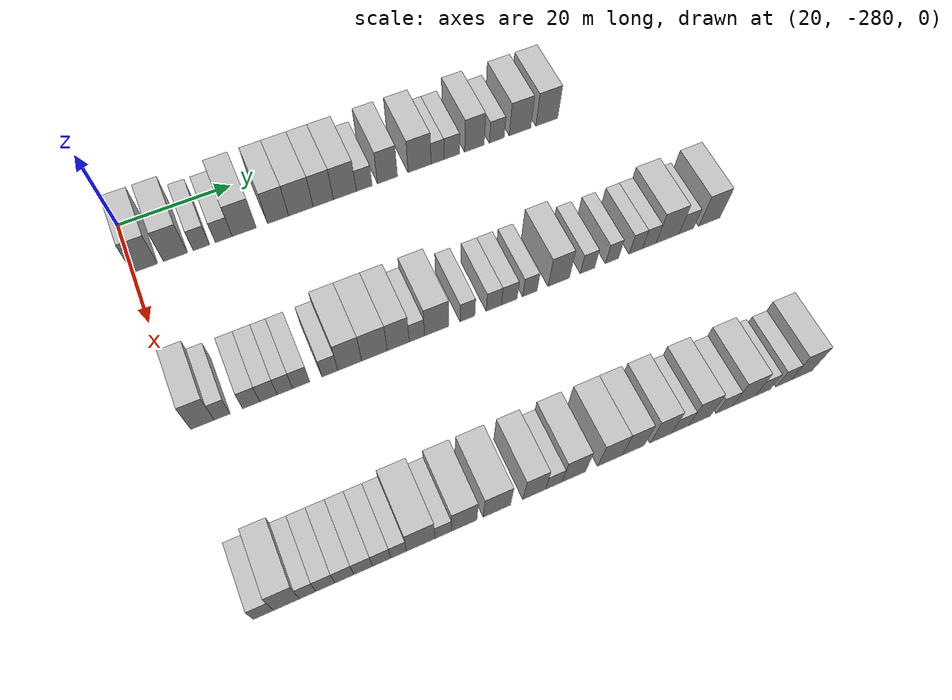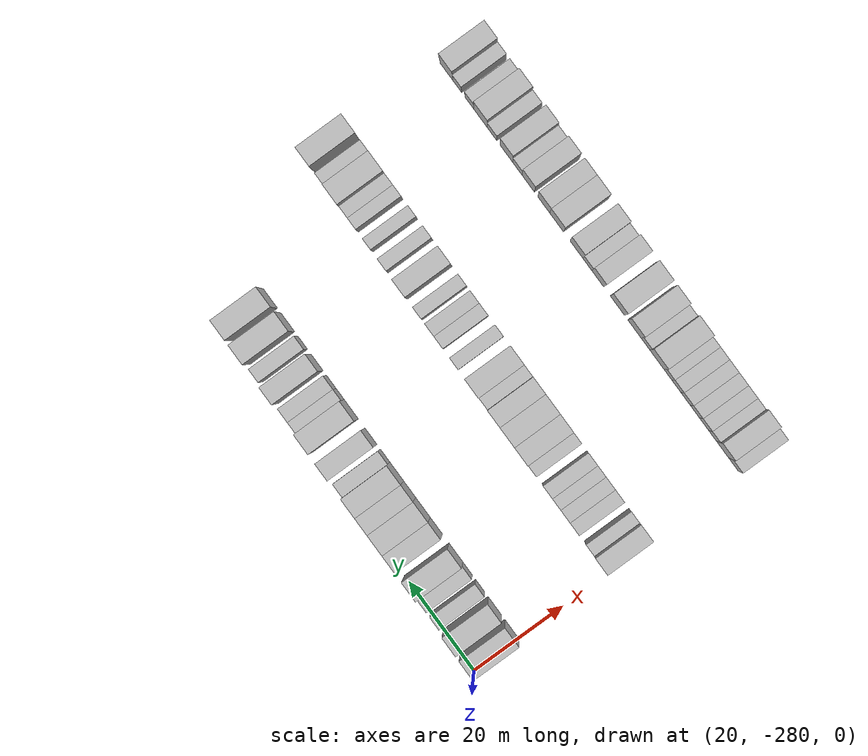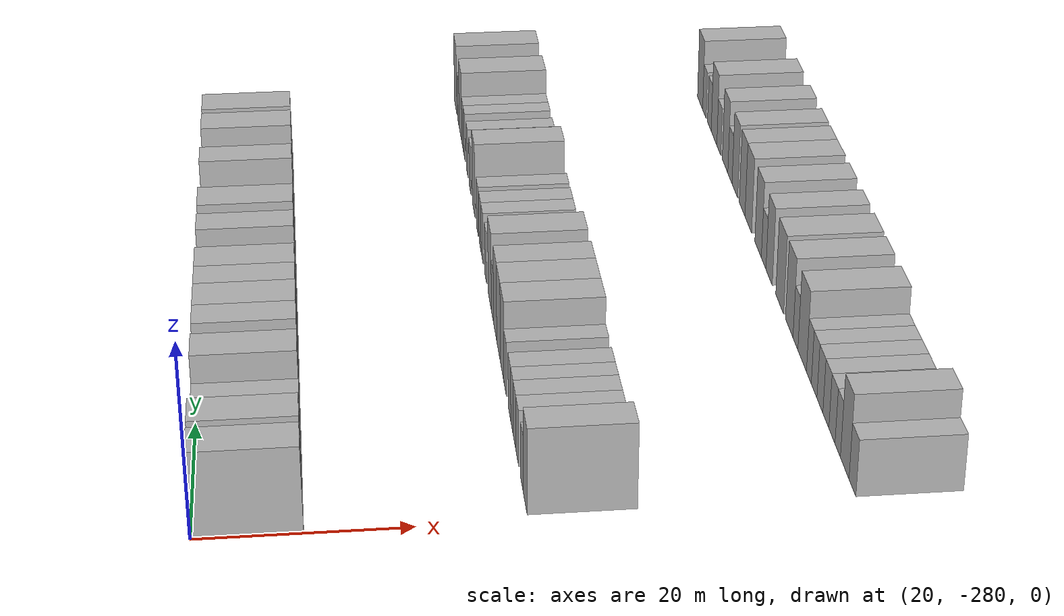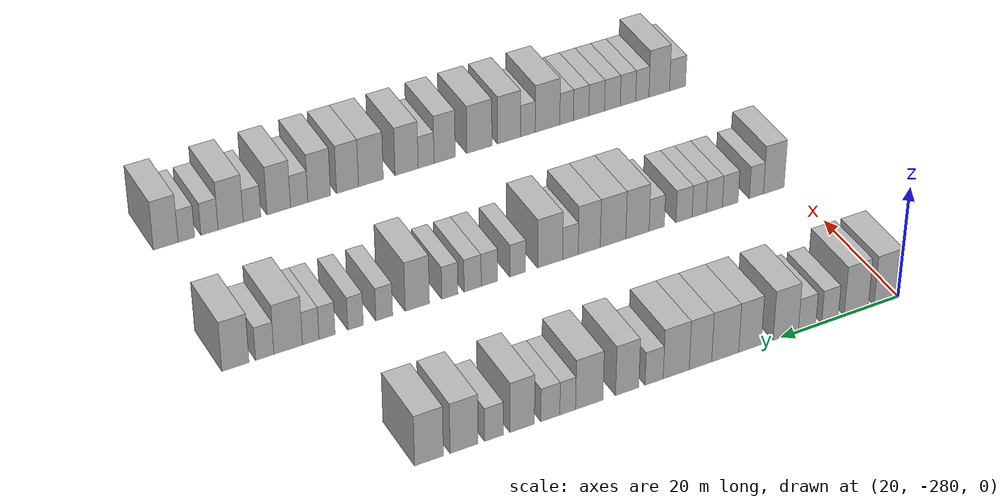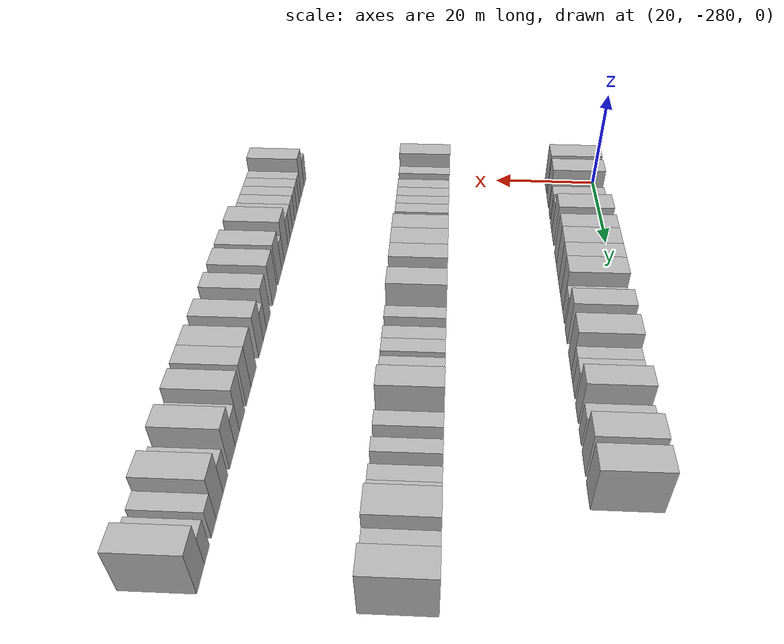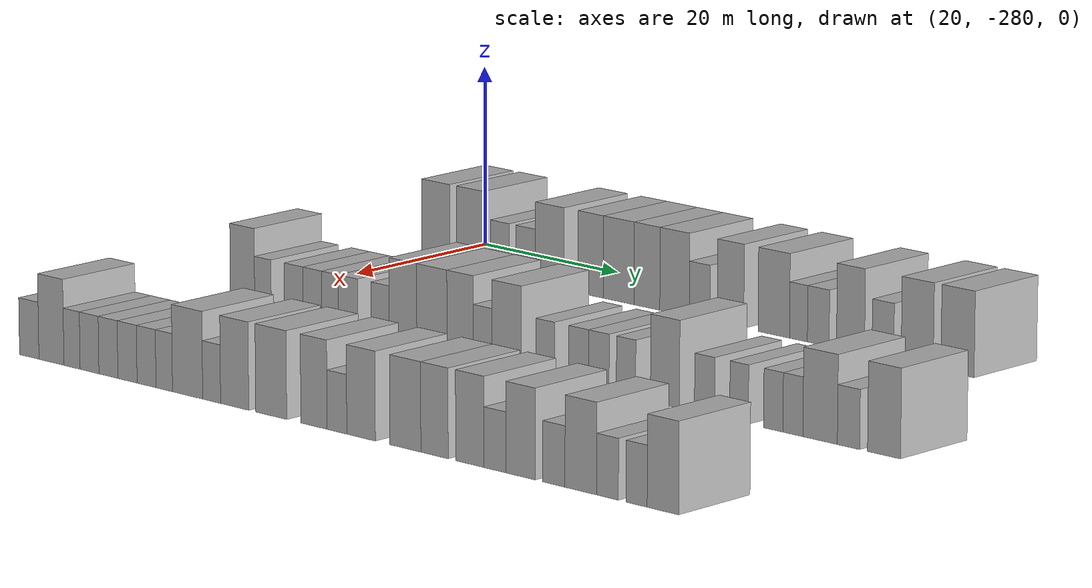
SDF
<sdf version="1.6">
 <world name="default">
  <model name="building_1">
   <static>1</static>
   <pose>25.0000 -277.8792 0 0.000000 0.000000 0.000000</pose>
   <link name="link">
    <pose>0 0 4.50 0 0 0</pose>
    <collision name="collision"><geometry><box><size>10.0000 4.2417 9.0000</size></box></geometry></collision>
    <visual name="visual">
     <cast_shadows>0</cast_shadows>
     <geometry><box><size>10.0000 4.2417 9.0000</size></box></geometry>
     <material>
      <script>
       <uri>model://HANNAS_wall/materials/scripts</uri>
       <uri>model://HANNAS_wall/materials/textures</uri>
       <name>vrc/HANNAS_wall</name>
      </script>
     </material>
    </visual>
   </link>
  </model>
  <model name="building_2">
   <static>1</static>
   <pose>25.0000 -272.6916 0 0.000000 0.000000 0.000000</pose>
   <link name="link">
    <pose>0 0 4.50 0 0 0</pose>
    <collision name="collision"><geometry><box><size>10.0000 4.1333 9.0000</size></box></geometry></collision>
    <visual name="visual">
     <cast_shadows>0</cast_shadows>
     <geometry><box><size>10.0000 4.1333 9.0000</size></box></geometry>
     <material>
      <script>
       <uri>model://HANNAS_wall/materials/scripts</uri>
       <uri>model://HANNAS_wall/materials/textures</uri>
       <name>vrc/HANNAS_wall</name>
      </script>
     </material>
    </visual>
   </link>
  </model>
  <model name="building_3">
   <static>1</static>
   <pose>25.0000 -268.2089 0 0.000000 0.000000 0.000000</pose>
   <link name="link">
    <pose>0 0 3.00 0 0 0</pose>
    <collision name="collision"><geometry><box><size>10.0000 2.8322 6.0000</size></box></geometry></collision>
    <visual name="visual">
     <cast_shadows>0</cast_shadows>
     <geometry><box><size>10.0000 2.8322 6.0000</size></box></geometry>
     <material>
      <script>
       <uri>model://HANNAS_wall/materials/scripts</uri>
       <uri>model://HANNAS_wall/materials/textures</uri>
       <name>vrc/HANNAS_wall</name>
      </script>
     </material>
    </visual>
   </link>
  </model>
  <model name="building_4">
   <static>1</static>
   <pose>25.0000 -264.3238 0 0.000000 0.000000 0.000000</pose>
   <link name="link">
    <pose>0 0 3.00 0 0 0</pose>
    <collision name="collision"><geometry><box><size>10.0000 2.9380 6.0000</size></box></geometry></collision>
    <visual name="visual">
     <cast_shadows>0</cast_shadows>
     <geometry><box><size>10.0000 2.9380 6.0000</size></box></geometry>
     <material>
      <script>
       <uri>model://HANNAS_wall/materials/scripts</uri>
       <uri>model://HANNAS_wall/materials/textures</uri>
       <name>vrc/HANNAS_wall</name>
      </script>
     </material>
    </visual>
   </link>
  </model>
  <model name="building_5">
   <static>1</static>
   <pose>25.0000 -260.7361 0 0.000000 0.000000 0.000000</pose>
   <link name="link">
    <pose>0 0 4.50 0 0 0</pose>
    <collision name="collision"><geometry><box><size>10.0000 4.2375 9.0000</size></box></geometry></collision>
    <visual name="visual">
     <cast_shadows>0</cast_shadows>
     <geometry><box><size>10.0000 4.2375 9.0000</size></box></geometry>
     <material>
      <script>
       <uri>model://HANNAS_wall/materials/scripts</uri>
       <uri>model://HANNAS_wall/materials/textures</uri>
       <name>vrc/HANNAS_wall</name>
      </script>
     </material>
    </visual>
   </link>
  </model>
  <model name="building_6">
   <static>1</static>
   <pose>25.0000 -254.7386 0 0.000000 0.000000 0.000000</pose>
   <link name="link">
    <pose>0 0 4.50 0 0 0</pose>
    <collision name="collision"><geometry><box><size>10.0000 3.7576 9.0000</size></box></geometry></collision>
    <visual name="visual">
     <cast_shadows>0</cast_shadows>
     <geometry><box><size>10.0000 3.7576 9.0000</size></box></geometry>
     <material>
      <script>
       <uri>model://HANNAS_wall/materials/scripts</uri>
       <uri>model://HANNAS_wall/materials/textures</uri>
       <name>vrc/HANNAS_wall</name>
      </script>
     </material>
    </visual>
   </link>
  </model>
  <model name="building_7">
   <static>1</static>
   <pose>25.0000 -250.6340 0 0.000000 0.000000 0.000000</pose>
   <link name="link">
    <pose>0 0 4.50 0 0 0</pose>
    <collision name="collision"><geometry><box><size>10.0000 4.4515 9.0000</size></box></geometry></collision>
    <visual name="visual">
     <cast_shadows>0</cast_shadows>
     <geometry><box><size>10.0000 4.4515 9.0000</size></box></geometry>
     <material>
      <script>
       <uri>model://HANNAS_wall/materials/scripts</uri>
       <uri>model://HANNAS_wall/materials/textures</uri>
       <name>vrc/HANNAS_wall</name>
      </script>
     </material>
    </visual>
   </link>
  </model>
  <model name="building_8">
   <static>1</static>
   <pose>25.0000 -246.5620 0 0.000000 0.000000 0.000000</pose>
   <link name="link">
    <pose>0 0 4.50 0 0 0</pose>
    <collision name="collision"><geometry><box><size>10.0000 3.6925 9.0000</size></box></geometry></collision>
    <visual name="visual">
     <cast_shadows>0</cast_shadows>
     <geometry><box><size>10.0000 3.6925 9.0000</size></box></geometry>
     <material>
      <script>
       <uri>model://HANNAS_wall/materials/scripts</uri>
       <uri>model://HANNAS_wall/materials/textures</uri>
       <name>vrc/HANNAS_wall</name>
      </script>
     </material>
    </visual>
   </link>
  </model>
  <model name="building_9">
   <static>1</static>
   <pose>25.0000 -242.6047 0 0.000000 0.000000 0.000000</pose>
   <link name="link">
    <pose>0 0 4.50 0 0 0</pose>
    <collision name="collision"><geometry><box><size>10.0000 4.2221 9.0000</size></box></geometry></collision>
    <visual name="visual">
     <cast_shadows>0</cast_shadows>
     <geometry><box><size>10.0000 4.2221 9.0000</size></box></geometry>
     <material>
      <script>
       <uri>model://HANNAS_wall/materials/scripts</uri>
       <uri>model://HANNAS_wall/materials/textures</uri>
       <name>vrc/HANNAS_wall</name>
      </script>
     </material>
    </visual>
   </link>
  </model>
  <model name="building_10">
   <static>1</static>
   <pose>25.0000 -239.0274 0 0.000000 0.000000 0.000000</pose>
   <link name="link">
    <pose>0 0 3.00 0 0 0</pose>
    <collision name="collision"><geometry><box><size>10.0000 2.9325 6.0000</size></box></geometry></collision>
    <visual name="visual">
     <cast_shadows>0</cast_shadows>
     <geometry><box><size>10.0000 2.9325 6.0000</size></box></geometry>
     <material>
      <script>
       <uri>model://HANNAS_wall/materials/scripts</uri>
       <uri>model://HANNAS_wall/materials/textures</uri>
       <name>vrc/HANNAS_wall</name>
      </script>
     </material>
    </visual>
   </link>
  </model>
  <model name="building_11">
   <static>1</static>
   <pose>25.0000 -234.6927 0 0.000000 0.000000 0.000000</pose>
   <link name="link">
    <pose>0 0 4.50 0 0 0</pose>
    <collision name="collision"><geometry><box><size>10.0000 3.7369 9.0000</size></box></geometry></collision>
    <visual name="visual">
     <cast_shadows>0</cast_shadows>
     <geometry><box><size>10.0000 3.7369 9.0000</size></box></geometry>
     <material>
      <script>
       <uri>model://HANNAS_wall/materials/scripts</uri>
       <uri>model://HANNAS_wall/materials/textures</uri>
       <name>vrc/HANNAS_wall</name>
      </script>
     </material>
    </visual>
   </link>
  </model>
  <model name="building_12">
   <static>1</static>
   <pose>25.0000 -228.6443 0 0.000000 0.000000 0.000000</pose>
   <link name="link">
    <pose>0 0 4.50 0 0 0</pose>
    <collision name="collision"><geometry><box><size>10.0000 4.3599 9.0000</size></box></geometry></collision>
    <visual name="visual">
     <cast_shadows>0</cast_shadows>
     <geometry><box><size>10.0000 4.3599 9.0000</size></box></geometry>
     <material>
      <script>
       <uri>model://HANNAS_wall/materials/scripts</uri>
       <uri>model://HANNAS_wall/materials/textures</uri>
       <name>vrc/HANNAS_wall</name>
      </script>
     </material>
    </visual>
   </link>
  </model>
  <model name="building_13">
   <static>1</static>
   <pose>25.0000 -225.2310 0 0.000000 0.000000 0.000000</pose>
   <link name="link">
    <pose>0 0 3.00 0 0 0</pose>
    <collision name="collision"><geometry><box><size>10.0000 2.4668 6.0000</size></box></geometry></collision>
    <visual name="visual">
     <cast_shadows>0</cast_shadows>
     <geometry><box><size>10.0000 2.4668 6.0000</size></box></geometry>
     <material>
      <script>
       <uri>model://HANNAS_wall/materials/scripts</uri>
       <uri>model://HANNAS_wall/materials/textures</uri>
       <name>vrc/HANNAS_wall</name>
      </script>
     </material>
    </visual>
   </link>
  </model>
  <model name="building_14">
   <static>1</static>
   <pose>25.0000 -222.5047 0 0.000000 0.000000 0.000000</pose>
   <link name="link">
    <pose>0 0 3.00 0 0 0</pose>
    <collision name="collision"><geometry><box><size>10.0000 2.9858 6.0000</size></box></geometry></collision>
    <visual name="visual">
     <cast_shadows>0</cast_shadows>
     <geometry><box><size>10.0000 2.9858 6.0000</size></box></geometry>
     <material>
      <script>
       <uri>model://HANNAS_wall/materials/scripts</uri>
       <uri>model://HANNAS_wall/materials/textures</uri>
       <name>vrc/HANNAS_wall</name>
      </script>
     </material>
    </visual>
   </link>
  </model>
  <model name="building_15">
   <static>1</static>
   <pose>25.0000 -218.1075 0 0.000000 0.000000 0.000000</pose>
   <link name="link">
    <pose>0 0 4.50 0 0 0</pose>
    <collision name="collision"><geometry><box><size>10.0000 3.8086 9.0000</size></box></geometry></collision>
    <visual name="visual">
     <cast_shadows>0</cast_shadows>
     <geometry><box><size>10.0000 3.8086 9.0000</size></box></geometry>
     <material>
      <script>
       <uri>model://HANNAS_wall/materials/scripts</uri>
       <uri>model://HANNAS_wall/materials/textures</uri>
       <name>vrc/HANNAS_wall</name>
      </script>
     </material>
    </visual>
   </link>
  </model>
  <model name="building_16">
   <static>1</static>
   <pose>25.0000 -213.7368 0 0.000000 0.000000 0.000000</pose>
   <link name="link">
    <pose>0 0 3.00 0 0 0</pose>
    <collision name="collision"><geometry><box><size>10.0000 2.9328 6.0000</size></box></geometry></collision>
    <visual name="visual">
     <cast_shadows>0</cast_shadows>
     <geometry><box><size>10.0000 2.9328 6.0000</size></box></geometry>
     <material>
      <script>
       <uri>model://HANNAS_wall/materials/scripts</uri>
       <uri>model://HANNAS_wall/materials/textures</uri>
       <name>vrc/HANNAS_wall</name>
      </script>
     </material>
    </visual>
   </link>
  </model>
  <model name="building_17">
   <static>1</static>
   <pose>25.0000 -209.1297 0 0.000000 0.000000 0.000000</pose>
   <link name="link">
    <pose>0 0 4.50 0 0 0</pose>
    <collision name="collision"><geometry><box><size>10.0000 4.2814 9.0000</size></box></geometry></collision>
    <visual name="visual">
     <cast_shadows>0</cast_shadows>
     <geometry><box><size>10.0000 4.2814 9.0000</size></box></geometry>
     <material>
      <script>
       <uri>model://HANNAS_wall/materials/scripts</uri>
       <uri>model://HANNAS_wall/materials/textures</uri>
       <name>vrc/HANNAS_wall</name>
      </script>
     </material>
    </visual>
   </link>
  </model>
  <model name="building_18">
   <static>1</static>
   <pose>25.0000 -203.7977 0 0.000000 0.000000 0.000000</pose>
   <link name="link">
    <pose>0 0 4.50 0 0 0</pose>
    <collision name="collision"><geometry><box><size>10.0000 4.3825 9.0000</size></box></geometry></collision>
    <visual name="visual">
     <cast_shadows>0</cast_shadows>
     <geometry><box><size>10.0000 4.3825 9.0000</size></box></geometry>
     <material>
      <script>
       <uri>model://HANNAS_wall/materials/scripts</uri>
       <uri>model://HANNAS_wall/materials/textures</uri>
       <name>vrc/HANNAS_wall</name>
      </script>
     </material>
    </visual>
   </link>
  </model>
  <model name="building_127">
   <static>1</static>
   <pose>55.0000 -277.1519 0 0.000000 0.000000 0.000000</pose>
   <link name="link">
    <pose>0 0 4.50 0 0 0</pose>
    <collision name="collision"><geometry><box><size>10.0000 3.6961 9.0000</size></box></geometry></collision>
    <visual name="visual">
     <cast_shadows>0</cast_shadows>
     <geometry><box><size>10.0000 3.6961 9.0000</size></box></geometry>
     <material>
      <script>
       <uri>model://HANNAS_wall/materials/scripts</uri>
       <uri>model://HANNAS_wall/materials/textures</uri>
       <name>vrc/HANNAS_wall</name>
      </script>
     </material>
    </visual>
   </link>
  </model>
  <model name="building_128">
   <static>1</static>
   <pose>55.0000 -274.0454 0 0.000000 0.000000 0.000000</pose>
   <link name="link">
    <pose>0 0 3.00 0 0 0</pose>
    <collision name="collision"><geometry><box><size>10.0000 2.5169 6.0000</size></box></geometry></collision>
    <visual name="visual">
     <cast_shadows>0</cast_shadows>
     <geometry><box><size>10.0000 2.5169 6.0000</size></box></geometry>
     <material>
      <script>
       <uri>model://HANNAS_wall/materials/scripts</uri>
       <uri>model://HANNAS_wall/materials/textures</uri>
       <name>vrc/HANNAS_wall</name>
      </script>
     </material>
    </visual>
   </link>
  </model>
  <model name="building_129">
   <static>1</static>
   <pose>55.0000 -269.3989 0 0.000000 0.000000 0.000000</pose>
   <link name="link">
    <pose>0 0 3.00 0 0 0</pose>
    <collision name="collision"><geometry><box><size>10.0000 2.7760 6.0000</size></box></geometry></collision>
    <visual name="visual">
     <cast_shadows>0</cast_shadows>
     <geometry><box><size>10.0000 2.7760 6.0000</size></box></geometry>
     <material>
      <script>
       <uri>model://HANNAS_wall/materials/scripts</uri>
       <uri>model://HANNAS_wall/materials/textures</uri>
       <name>vrc/HANNAS_wall</name>
      </script>
     </material>
    </visual>
   </link>
  </model>
  <model name="building_130">
   <static>1</static>
   <pose>55.0000 -266.6018 0 0.000000 0.000000 0.000000</pose>
   <link name="link">
    <pose>0 0 3.00 0 0 0</pose>
    <collision name="collision"><geometry><box><size>10.0000 2.8182 6.0000</size></box></geometry></collision>
    <visual name="visual">
     <cast_shadows>0</cast_shadows>
     <geometry><box><size>10.0000 2.8182 6.0000</size></box></geometry>
     <material>
      <script>
       <uri>model://HANNAS_wall/materials/scripts</uri>
       <uri>model://HANNAS_wall/materials/textures</uri>
       <name>vrc/HANNAS_wall</name>
      </script>
     </material>
    </visual>
   </link>
  </model>
  <model name="building_131">
   <static>1</static>
   <pose>55.0000 -263.9467 0 0.000000 0.000000 0.000000</pose>
   <link name="link">
    <pose>0 0 3.00 0 0 0</pose>
    <collision name="collision"><geometry><box><size>10.0000 2.4919 6.0000</size></box></geometry></collision>
    <visual name="visual">
     <cast_shadows>0</cast_shadows>
     <geometry><box><size>10.0000 2.4919 6.0000</size></box></geometry>
     <material>
      <script>
       <uri>model://HANNAS_wall/materials/scripts</uri>
       <uri>model://HANNAS_wall/materials/textures</uri>
       <name>vrc/HANNAS_wall</name>
      </script>
     </material>
    </visual>
   </link>
  </model>
  <model name="building_132">
   <static>1</static>
   <pose>55.0000 -261.2927 0 0.000000 0.000000 0.000000</pose>
   <link name="link">
    <pose>0 0 3.00 0 0 0</pose>
    <collision name="collision"><geometry><box><size>10.0000 2.8162 6.0000</size></box></geometry></collision>
    <visual name="visual">
     <cast_shadows>0</cast_shadows>
     <geometry><box><size>10.0000 2.8162 6.0000</size></box></geometry>
     <material>
      <script>
       <uri>model://HANNAS_wall/materials/scripts</uri>
       <uri>model://HANNAS_wall/materials/textures</uri>
       <name>vrc/HANNAS_wall</name>
      </script>
     </material>
    </visual>
   </link>
  </model>
  <model name="building_133">
   <static>1</static>
   <pose>55.0000 -256.5629 0 0.000000 0.000000 0.000000</pose>
   <link name="link">
    <pose>0 0 3.00 0 0 0</pose>
    <collision name="collision"><geometry><box><size>10.0000 2.6432 6.0000</size></box></geometry></collision>
    <visual name="visual">
     <cast_shadows>0</cast_shadows>
     <geometry><box><size>10.0000 2.6432 6.0000</size></box></geometry>
     <material>
      <script>
       <uri>model://HANNAS_wall/materials/scripts</uri>
       <uri>model://HANNAS_wall/materials/textures</uri>
       <name>vrc/HANNAS_wall</name>
      </script>
     </material>
    </visual>
   </link>
  </model>
  <model name="building_134">
   <static>1</static>
   <pose>55.0000 -253.2460 0 0.000000 0.000000 0.000000</pose>
   <link name="link">
    <pose>0 0 4.50 0 0 0</pose>
    <collision name="collision"><geometry><box><size>10.0000 3.9907 9.0000</size></box></geometry></collision>
    <visual name="visual">
     <cast_shadows>0</cast_shadows>
     <geometry><box><size>10.0000 3.9907 9.0000</size></box></geometry>
     <material>
      <script>
       <uri>model://HANNAS_wall/materials/scripts</uri>
       <uri>model://HANNAS_wall/materials/textures</uri>
       <name>vrc/HANNAS_wall</name>
      </script>
     </material>
    </visual>
   </link>
  </model>
  <model name="building_135">
   <static>1</static>
   <pose>55.0000 -249.0757 0 0.000000 0.000000 0.000000</pose>
   <link name="link">
    <pose>0 0 4.50 0 0 0</pose>
    <collision name="collision"><geometry><box><size>10.0000 4.3499 9.0000</size></box></geometry></collision>
    <visual name="visual">
     <cast_shadows>0</cast_shadows>
     <geometry><box><size>10.0000 4.3499 9.0000</size></box></geometry>
     <material>
      <script>
       <uri>model://HANNAS_wall/materials/scripts</uri>
       <uri>model://HANNAS_wall/materials/textures</uri>
       <name>vrc/HANNAS_wall</name>
      </script>
     </material>
    </visual>
   </link>
  </model>
  <model name="building_136">
   <static>1</static>
   <pose>55.0000 -245.0255 0 0.000000 0.000000 0.000000</pose>
   <link name="link">
    <pose>0 0 4.50 0 0 0</pose>
    <collision name="collision"><geometry><box><size>10.0000 3.7504 9.0000</size></box></geometry></collision>
    <visual name="visual">
     <cast_shadows>0</cast_shadows>
     <geometry><box><size>10.0000 3.7504 9.0000</size></box></geometry>
     <material>
      <script>
       <uri>model://HANNAS_wall/materials/scripts</uri>
       <uri>model://HANNAS_wall/materials/textures</uri>
       <name>vrc/HANNAS_wall</name>
      </script>
     </material>
    </visual>
   </link>
  </model>
  <model name="building_137">
   <static>1</static>
   <pose>55.0000 -241.8328 0 0.000000 0.000000 0.000000</pose>
   <link name="link">
    <pose>0 0 3.00 0 0 0</pose>
    <collision name="collision"><geometry><box><size>10.0000 2.6351 6.0000</size></box></geometry></collision>
    <visual name="visual">
     <cast_shadows>0</cast_shadows>
     <geometry><box><size>10.0000 2.6351 6.0000</size></box></geometry>
     <material>
      <script>
       <uri>model://HANNAS_wall/materials/scripts</uri>
       <uri>model://HANNAS_wall/materials/textures</uri>
       <name>vrc/HANNAS_wall</name>
      </script>
     </material>
    </visual>
   </link>
  </model>
  <model name="building_138">
   <static>1</static>
   <pose>55.0000 -238.4219 0 0.000000 0.000000 0.000000</pose>
   <link name="link">
    <pose>0 0 4.50 0 0 0</pose>
    <collision name="collision"><geometry><box><size>10.0000 4.1868 9.0000</size></box></geometry></collision>
    <visual name="visual">
     <cast_shadows>0</cast_shadows>
     <geometry><box><size>10.0000 4.1868 9.0000</size></box></geometry>
     <material>
      <script>
       <uri>model://HANNAS_wall/materials/scripts</uri>
       <uri>model://HANNAS_wall/materials/textures</uri>
       <name>vrc/HANNAS_wall</name>
      </script>
     </material>
    </visual>
   </link>
  </model>
  <model name="building_139">
   <static>1</static>
   <pose>55.0000 -233.0221 0 0.000000 0.000000 0.000000</pose>
   <link name="link">
    <pose>0 0 3.00 0 0 0</pose>
    <collision name="collision"><geometry><box><size>10.0000 2.6127 6.0000</size></box></geometry></collision>
    <visual name="visual">
     <cast_shadows>0</cast_shadows>
     <geometry><box><size>10.0000 2.6127 6.0000</size></box></geometry>
     <material>
      <script>
       <uri>model://HANNAS_wall/materials/scripts</uri>
       <uri>model://HANNAS_wall/materials/textures</uri>
       <name>vrc/HANNAS_wall</name>
      </script>
     </material>
    </visual>
   </link>
  </model>
  <model name="building_140">
   <static>1</static>
   <pose>55.0000 -228.3564 0 0.000000 0.000000 0.000000</pose>
   <link name="link">
    <pose>0 0 3.00 0 0 0</pose>
    <collision name="collision"><geometry><box><size>10.0000 2.7188 6.0000</size></box></geometry></collision>
    <visual name="visual">
     <cast_shadows>0</cast_shadows>
     <geometry><box><size>10.0000 2.7188 6.0000</size></box></geometry>
     <material>
      <script>
       <uri>model://HANNAS_wall/materials/scripts</uri>
       <uri>model://HANNAS_wall/materials/textures</uri>
       <name>vrc/HANNAS_wall</name>
      </script>
     </material>
    </visual>
   </link>
  </model>
  <model name="building_141">
   <static>1</static>
   <pose>55.0000 -225.5922 0 0.000000 0.000000 0.000000</pose>
   <link name="link">
    <pose>0 0 3.00 0 0 0</pose>
    <collision name="collision"><geometry><box><size>10.0000 2.8096 6.0000</size></box></geometry></collision>
    <visual name="visual">
     <cast_shadows>0</cast_shadows>
     <geometry><box><size>10.0000 2.8096 6.0000</size></box></geometry>
     <material>
      <script>
       <uri>model://HANNAS_wall/materials/scripts</uri>
       <uri>model://HANNAS_wall/materials/textures</uri>
       <name>vrc/HANNAS_wall</name>
      </script>
     </material>
    </visual>
   </link>
  </model>
  <model name="building_142">
   <static>1</static>
   <pose>55.0000 -221.8724 0 0.000000 0.000000 0.000000</pose>
   <link name="link">
    <pose>0 0 3.00 0 0 0</pose>
    <collision name="collision"><geometry><box><size>10.0000 2.6299 6.0000</size></box></geometry></collision>
    <visual name="visual">
     <cast_shadows>0</cast_shadows>
     <geometry><box><size>10.0000 2.6299 6.0000</size></box></geometry>
     <material>
      <script>
       <uri>model://HANNAS_wall/materials/scripts</uri>
       <uri>model://HANNAS_wall/materials/textures</uri>
       <name>vrc/HANNAS_wall</name>
      </script>
     </material>
    </visual>
   </link>
  </model>
  <model name="building_143">
   <static>1</static>
   <pose>55.0000 -216.5961 0 0.000000 0.000000 0.000000</pose>
   <link name="link">
    <pose>0 0 4.50 0 0 0</pose>
    <collision name="collision"><geometry><box><size>10.0000 3.9227 9.0000</size></box></geometry></collision>
    <visual name="visual">
     <cast_shadows>0</cast_shadows>
     <geometry><box><size>10.0000 3.9227 9.0000</size></box></geometry>
     <material>
      <script>
       <uri>model://HANNAS_wall/materials/scripts</uri>
       <uri>model://HANNAS_wall/materials/textures</uri>
       <name>vrc/HANNAS_wall</name>
      </script>
     </material>
    </visual>
   </link>
  </model>
  <model name="building_144">
   <static>1</static>
   <pose>55.0000 -211.2910 0 0.000000 0.000000 0.000000</pose>
   <link name="link">
    <pose>0 0 3.00 0 0 0</pose>
    <collision name="collision"><geometry><box><size>10.0000 2.6875 6.0000</size></box></geometry></collision>
    <visual name="visual">
     <cast_shadows>0</cast_shadows>
     <geometry><box><size>10.0000 2.6875 6.0000</size></box></geometry>
     <material>
      <script>
       <uri>model://HANNAS_wall/materials/scripts</uri>
       <uri>model://HANNAS_wall/materials/textures</uri>
       <name>vrc/HANNAS_wall</name>
      </script>
     </material>
    </visual>
   </link>
  </model>
  <model name="building_145">
   <static>1</static>
   <pose>55.0000 -206.7177 0 0.000000 0.000000 0.000000</pose>
   <link name="link">
    <pose>0 0 3.00 0 0 0</pose>
    <collision name="collision"><geometry><box><size>10.0000 2.4591 6.0000</size></box></geometry></collision>
    <visual name="visual">
     <cast_shadows>0</cast_shadows>
     <geometry><box><size>10.0000 2.4591 6.0000</size></box></geometry>
     <material>
      <script>
       <uri>model://HANNAS_wall/materials/scripts</uri>
       <uri>model://HANNAS_wall/materials/textures</uri>
       <name>vrc/HANNAS_wall</name>
      </script>
     </material>
    </visual>
   </link>
  </model>
  <model name="building_146">
   <static>1</static>
   <pose>55.0000 -202.2250 0 0.000000 0.000000 0.000000</pose>
   <link name="link">
    <pose>0 0 3.00 0 0 0</pose>
    <collision name="collision"><geometry><box><size>10.0000 2.5265 6.0000</size></box></geometry></collision>
    <visual name="visual">
     <cast_shadows>0</cast_shadows>
     <geometry><box><size>10.0000 2.5265 6.0000</size></box></geometry>
     <material>
      <script>
       <uri>model://HANNAS_wall/materials/scripts</uri>
       <uri>model://HANNAS_wall/materials/textures</uri>
       <name>vrc/HANNAS_wall</name>
      </script>
     </material>
    </visual>
   </link>
  </model>
  <model name="building_147">
   <static>1</static>
   <pose>55.0000 -199.6662 0 0.000000 0.000000 0.000000</pose>
   <link name="link">
    <pose>0 0 3.00 0 0 0</pose>
    <collision name="collision"><geometry><box><size>10.0000 2.5911 6.0000</size></box></geometry></collision>
    <visual name="visual">
     <cast_shadows>0</cast_shadows>
     <geometry><box><size>10.0000 2.5911 6.0000</size></box></geometry>
     <material>
      <script>
       <uri>model://HANNAS_wall/materials/scripts</uri>
       <uri>model://HANNAS_wall/materials/textures</uri>
       <name>vrc/HANNAS_wall</name>
      </script>
     </material>
    </visual>
   </link>
  </model>
  <model name="building_148">
   <static>1</static>
   <pose>55.0000 -196.1461 0 0.000000 0.000000 0.000000</pose>
   <link name="link">
    <pose>0 0 4.50 0 0 0</pose>
    <collision name="collision"><geometry><box><size>10.0000 4.4492 9.0000</size></box></geometry></collision>
    <visual name="visual">
     <cast_shadows>0</cast_shadows>
     <geometry><box><size>10.0000 4.4492 9.0000</size></box></geometry>
     <material>
      <script>
       <uri>model://HANNAS_wall/materials/scripts</uri>
       <uri>model://HANNAS_wall/materials/textures</uri>
       <name>vrc/HANNAS_wall</name>
      </script>
     </material>
    </visual>
   </link>
  </model>
  <model name="building_149">
   <static>1</static>
   <pose>55.0000 -192.4991 0 0.000000 0.000000 0.000000</pose>
   <link name="link">
    <pose>0 0 3.00 0 0 0</pose>
    <collision name="collision"><geometry><box><size>10.0000 2.8448 6.0000</size></box></geometry></collision>
    <visual name="visual">
     <cast_shadows>0</cast_shadows>
     <geometry><box><size>10.0000 2.8448 6.0000</size></box></geometry>
     <material>
      <script>
       <uri>model://HANNAS_wall/materials/scripts</uri>
       <uri>model://HANNAS_wall/materials/textures</uri>
       <name>vrc/HANNAS_wall</name>
      </script>
     </material>
    </visual>
   </link>
  </model>
  <model name="building_150">
   <static>1</static>
   <pose>55.0000 -187.9894 0 0.000000 0.000000 0.000000</pose>
   <link name="link">
    <pose>0 0 4.50 0 0 0</pose>
    <collision name="collision"><geometry><box><size>10.0000 4.1746 9.0000</size></box></geometry></collision>
    <visual name="visual">
     <cast_shadows>0</cast_shadows>
     <geometry><box><size>10.0000 4.1746 9.0000</size></box></geometry>
     <material>
      <script>
       <uri>model://HANNAS_wall/materials/scripts</uri>
       <uri>model://HANNAS_wall/materials/textures</uri>
       <name>vrc/HANNAS_wall</name>
      </script>
     </material>
    </visual>
   </link>
  </model>
  <model name="building_273">
   <static>1</static>
   <pose>85.0000 -277.5252 0 0.000000 0.000000 0.000000</pose>
   <link name="link">
    <pose>0 0 3.00 0 0 0</pose>
    <collision name="collision"><geometry><box><size>10.0000 2.9495 6.0000</size></box></geometry></collision>
    <visual name="visual">
     <cast_shadows>0</cast_shadows>
     <geometry><box><size>10.0000 2.9495 6.0000</size></box></geometry>
     <material>
      <script>
       <uri>model://HANNAS_wall/materials/scripts</uri>
       <uri>model://HANNAS_wall/materials/textures</uri>
       <name>vrc/HANNAS_wall</name>
      </script>
     </material>
    </visual>
   </link>
  </model>
  <model name="building_274">
   <static>1</static>
   <pose>85.0000 -274.1515 0 0.000000 0.000000 0.000000</pose>
   <link name="link">
    <pose>0 0 4.50 0 0 0</pose>
    <collision name="collision"><geometry><box><size>10.0000 3.7980 9.0000</size></box></geometry></collision>
    <visual name="visual">
     <cast_shadows>0</cast_shadows>
     <geometry><box><size>10.0000 3.7980 9.0000</size></box></geometry>
     <material>
      <script>
       <uri>model://HANNAS_wall/materials/scripts</uri>
       <uri>model://HANNAS_wall/materials/textures</uri>
       <name>vrc/HANNAS_wall</name>
      </script>
     </material>
    </visual>
   </link>
  </model>
  <model name="building_275">
   <static>1</static>
   <pose>85.0000 -271.0342 0 0.000000 0.000000 0.000000</pose>
   <link name="link">
    <pose>0 0 3.00 0 0 0</pose>
    <collision name="collision"><geometry><box><size>10.0000 2.4365 6.0000</size></box></geometry></collision>
    <visual name="visual">
     <cast_shadows>0</cast_shadows>
     <geometry><box><size>10.0000 2.4365 6.0000</size></box></geometry>
     <material>
      <script>
       <uri>model://HANNAS_wall/materials/scripts</uri>
       <uri>model://HANNAS_wall/materials/textures</uri>
       <name>vrc/HANNAS_wall</name>
      </script>
     </material>
    </visual>
   </link>
  </model>
  <model name="building_276">
   <static>1</static>
   <pose>85.0000 -268.4057 0 0.000000 0.000000 0.000000</pose>
   <link name="link">
    <pose>0 0 3.00 0 0 0</pose>
    <collision name="collision"><geometry><box><size>10.0000 2.8207 6.0000</size></box></geometry></collision>
    <visual name="visual">
     <cast_shadows>0</cast_shadows>
     <geometry><box><size>10.0000 2.8207 6.0000</size></box></geometry>
     <material>
      <script>
       <uri>model://HANNAS_wall/materials/scripts</uri>
       <uri>model://HANNAS_wall/materials/textures</uri>
       <name>vrc/HANNAS_wall</name>
      </script>
     </material>
    </visual>
   </link>
  </model>
  <model name="building_277">
   <static>1</static>
   <pose>85.0000 -265.5813 0 0.000000 0.000000 0.000000</pose>
   <link name="link">
    <pose>0 0 3.00 0 0 0</pose>
    <collision name="collision"><geometry><box><size>10.0000 2.8281 6.0000</size></box></geometry></collision>
    <visual name="visual">
     <cast_shadows>0</cast_shadows>
     <geometry><box><size>10.0000 2.8281 6.0000</size></box></geometry>
     <material>
      <script>
       <uri>model://HANNAS_wall/materials/scripts</uri>
       <uri>model://HANNAS_wall/materials/textures</uri>
       <name>vrc/HANNAS_wall</name>
      </script>
     </material>
    </visual>
   </link>
  </model>
  <model name="building_278">
   <static>1</static>
   <pose>85.0000 -262.7445 0 0.000000 0.000000 0.000000</pose>
   <link name="link">
    <pose>0 0 3.00 0 0 0</pose>
    <collision name="collision"><geometry><box><size>10.0000 2.8454 6.0000</size></box></geometry></collision>
    <visual name="visual">
     <cast_shadows>0</cast_shadows>
     <geometry><box><size>10.0000 2.8454 6.0000</size></box></geometry>
     <material>
      <script>
       <uri>model://HANNAS_wall/materials/scripts</uri>
       <uri>model://HANNAS_wall/materials/textures</uri>
       <name>vrc/HANNAS_wall</name>
      </script>
     </material>
    </visual>
   </link>
  </model>
  <model name="building_279">
   <static>1</static>
   <pose>85.0000 -259.9304 0 0.000000 0.000000 0.000000</pose>
   <link name="link">
    <pose>0 0 3.00 0 0 0</pose>
    <collision name="collision"><geometry><box><size>10.0000 2.7828 6.0000</size></box></geometry></collision>
    <visual name="visual">
     <cast_shadows>0</cast_shadows>
     <geometry><box><size>10.0000 2.7828 6.0000</size></box></geometry>
     <material>
      <script>
       <uri>model://HANNAS_wall/materials/scripts</uri>
       <uri>model://HANNAS_wall/materials/textures</uri>
       <name>vrc/HANNAS_wall</name>
      </script>
     </material>
    </visual>
   </link>
  </model>
  <model name="building_280">
   <static>1</static>
   <pose>85.0000 -257.3293 0 0.000000 0.000000 0.000000</pose>
   <link name="link">
    <pose>0 0 3.00 0 0 0</pose>
    <collision name="collision"><geometry><box><size>10.0000 2.4194 6.0000</size></box></geometry></collision>
    <visual name="visual">
     <cast_shadows>0</cast_shadows>
     <geometry><box><size>10.0000 2.4194 6.0000</size></box></geometry>
     <material>
      <script>
       <uri>model://HANNAS_wall/materials/scripts</uri>
       <uri>model://HANNAS_wall/materials/textures</uri>
       <name>vrc/HANNAS_wall</name>
      </script>
     </material>
    </visual>
   </link>
  </model>
  <model name="building_281">
   <static>1</static>
   <pose>85.0000 -253.9225 0 0.000000 0.000000 0.000000</pose>
   <link name="link">
    <pose>0 0 4.50 0 0 0</pose>
    <collision name="collision"><geometry><box><size>10.0000 4.3942 9.0000</size></box></geometry></collision>
    <visual name="visual">
     <cast_shadows>0</cast_shadows>
     <geometry><box><size>10.0000 4.3942 9.0000</size></box></geometry>
     <material>
      <script>
       <uri>model://HANNAS_wall/materials/scripts</uri>
       <uri>model://HANNAS_wall/materials/textures</uri>
       <name>vrc/HANNAS_wall</name>
      </script>
     </material>
    </visual>
   </link>
  </model>
  <model name="building_282">
   <static>1</static>
   <pose>85.0000 -250.4327 0 0.000000 0.000000 0.000000</pose>
   <link name="link">
    <pose>0 0 3.00 0 0 0</pose>
    <collision name="collision"><geometry><box><size>10.0000 2.5852 6.0000</size></box></geometry></collision>
    <visual name="visual">
     <cast_shadows>0</cast_shadows>
     <geometry><box><size>10.0000 2.5852 6.0000</size></box></geometry>
     <material>
      <script>
       <uri>model://HANNAS_wall/materials/scripts</uri>
       <uri>model://HANNAS_wall/materials/textures</uri>
       <name>vrc/HANNAS_wall</name>
      </script>
     </material>
    </visual>
   </link>
  </model>
  <model name="building_283">
   <static>1</static>
   <pose>85.0000 -247.1190 0 0.000000 0.000000 0.000000</pose>
   <link name="link">
    <pose>0 0 4.50 0 0 0</pose>
    <collision name="collision"><geometry><box><size>10.0000 4.0423 9.0000</size></box></geometry></collision>
    <visual name="visual">
     <cast_shadows>0</cast_shadows>
     <geometry><box><size>10.0000 4.0423 9.0000</size></box></geometry>
     <material>
      <script>
       <uri>model://HANNAS_wall/materials/scripts</uri>
       <uri>model://HANNAS_wall/materials/textures</uri>
       <name>vrc/HANNAS_wall</name>
      </script>
     </material>
    </visual>
   </link>
  </model>
  <model name="building_284">
   <static>1</static>
   <pose>85.0000 -241.9040 0 0.000000 0.000000 0.000000</pose>
   <link name="link">
    <pose>0 0 4.50 0 0 0</pose>
    <collision name="collision"><geometry><box><size>10.0000 4.3877 9.0000</size></box></geometry></collision>
    <visual name="visual">
     <cast_shadows>0</cast_shadows>
     <geometry><box><size>10.0000 4.3877 9.0000</size></box></geometry>
     <material>
      <script>
       <uri>model://HANNAS_wall/materials/scripts</uri>
       <uri>model://HANNAS_wall/materials/textures</uri>
       <name>vrc/HANNAS_wall</name>
      </script>
     </material>
    </visual>
   </link>
  </model>
  <model name="building_285">
   <static>1</static>
   <pose>85.0000 -235.8750 0 0.000000 0.000000 0.000000</pose>
   <link name="link">
    <pose>0 0 4.50 0 0 0</pose>
    <collision name="collision"><geometry><box><size>10.0000 3.6702 9.0000</size></box></geometry></collision>
    <visual name="visual">
     <cast_shadows>0</cast_shadows>
     <geometry><box><size>10.0000 3.6702 9.0000</size></box></geometry>
     <material>
      <script>
       <uri>model://HANNAS_wall/materials/scripts</uri>
       <uri>model://HANNAS_wall/materials/textures</uri>
       <name>vrc/HANNAS_wall</name>
      </script>
     </material>
    </visual>
   </link>
  </model>
  <model name="building_286">
   <static>1</static>
   <pose>85.0000 -232.6716 0 0.000000 0.000000 0.000000</pose>
   <link name="link">
    <pose>0 0 3.00 0 0 0</pose>
    <collision name="collision"><geometry><box><size>10.0000 2.7366 6.0000</size></box></geometry></collision>
    <visual name="visual">
     <cast_shadows>0</cast_shadows>
     <geometry><box><size>10.0000 2.7366 6.0000</size></box></geometry>
     <material>
      <script>
       <uri>model://HANNAS_wall/materials/scripts</uri>
       <uri>model://HANNAS_wall/materials/textures</uri>
       <name>vrc/HANNAS_wall</name>
      </script>
     </material>
    </visual>
   </link>
  </model>
  <model name="building_287">
   <static>1</static>
   <pose>85.0000 -229.3312 0 0.000000 0.000000 0.000000</pose>
   <link name="link">
    <pose>0 0 4.50 0 0 0</pose>
    <collision name="collision"><geometry><box><size>10.0000 3.9441 9.0000</size></box></geometry></collision>
    <visual name="visual">
     <cast_shadows>0</cast_shadows>
     <geometry><box><size>10.0000 3.9441 9.0000</size></box></geometry>
     <material>
      <script>
       <uri>model://HANNAS_wall/materials/scripts</uri>
       <uri>model://HANNAS_wall/materials/textures</uri>
       <name>vrc/HANNAS_wall</name>
      </script>
     </material>
    </visual>
   </link>
  </model>
  <model name="building_288">
   <static>1</static>
   <pose>85.0000 -223.2559 0 0.000000 0.000000 0.000000</pose>
   <link name="link">
    <pose>0 0 4.50 0 0 0</pose>
    <collision name="collision"><geometry><box><size>10.0000 4.2065 9.0000</size></box></geometry></collision>
    <visual name="visual">
     <cast_shadows>0</cast_shadows>
     <geometry><box><size>10.0000 4.2065 9.0000</size></box></geometry>
     <material>
      <script>
       <uri>model://HANNAS_wall/materials/scripts</uri>
       <uri>model://HANNAS_wall/materials/textures</uri>
       <name>vrc/HANNAS_wall</name>
      </script>
     </material>
    </visual>
   </link>
  </model>
  <model name="building_289">
   <static>1</static>
   <pose>85.0000 -219.3046 0 0.000000 0.000000 0.000000</pose>
   <link name="link">
    <pose>0 0 4.50 0 0 0</pose>
    <collision name="collision"><geometry><box><size>10.0000 3.6961 9.0000</size></box></geometry></collision>
    <visual name="visual">
     <cast_shadows>0</cast_shadows>
     <geometry><box><size>10.0000 3.6961 9.0000</size></box></geometry>
     <material>
      <script>
       <uri>model://HANNAS_wall/materials/scripts</uri>
       <uri>model://HANNAS_wall/materials/textures</uri>
       <name>vrc/HANNAS_wall</name>
      </script>
     </material>
    </visual>
   </link>
  </model>
  <model name="building_290">
   <static>1</static>
   <pose>85.0000 -214.5612 0 0.000000 0.000000 0.000000</pose>
   <link name="link">
    <pose>0 0 4.50 0 0 0</pose>
    <collision name="collision"><geometry><box><size>10.0000 3.7906 9.0000</size></box></geometry></collision>
    <visual name="visual">
     <cast_shadows>0</cast_shadows>
     <geometry><box><size>10.0000 3.7906 9.0000</size></box></geometry>
     <material>
      <script>
       <uri>model://HANNAS_wall/materials/scripts</uri>
       <uri>model://HANNAS_wall/materials/textures</uri>
       <name>vrc/HANNAS_wall</name>
      </script>
     </material>
    </visual>
   </link>
  </model>
  <model name="building_291">
   <static>1</static>
   <pose>85.0000 -211.2256 0 0.000000 0.000000 0.000000</pose>
   <link name="link">
    <pose>0 0 3.00 0 0 0</pose>
    <collision name="collision"><geometry><box><size>10.0000 2.8806 6.0000</size></box></geometry></collision>
    <visual name="visual">
     <cast_shadows>0</cast_shadows>
     <geometry><box><size>10.0000 2.8806 6.0000</size></box></geometry>
     <material>
      <script>
       <uri>model://HANNAS_wall/materials/scripts</uri>
       <uri>model://HANNAS_wall/materials/textures</uri>
       <name>vrc/HANNAS_wall</name>
      </script>
     </material>
    </visual>
   </link>
  </model>
  <model name="building_292">
   <static>1</static>
   <pose>85.0000 -207.8451 0 0.000000 0.000000 0.000000</pose>
   <link name="link">
    <pose>0 0 4.50 0 0 0</pose>
    <collision name="collision"><geometry><box><size>10.0000 3.8804 9.0000</size></box></geometry></collision>
    <visual name="visual">
     <cast_shadows>0</cast_shadows>
     <geometry><box><size>10.0000 3.8804 9.0000</size></box></geometry>
     <material>
      <script>
       <uri>model://HANNAS_wall/materials/scripts</uri>
       <uri>model://HANNAS_wall/materials/textures</uri>
       <name>vrc/HANNAS_wall</name>
      </script>
     </material>
    </visual>
   </link>
  </model>
  <model name="building_293">
   <static>1</static>
   <pose>85.0000 -203.4625 0 0.000000 0.000000 0.000000</pose>
   <link name="link">
    <pose>0 0 3.00 0 0 0</pose>
    <collision name="collision"><geometry><box><size>10.0000 2.8849 6.0000</size></box></geometry></collision>
    <visual name="visual">
     <cast_shadows>0</cast_shadows>
     <geometry><box><size>10.0000 2.8849 6.0000</size></box></geometry>
     <material>
      <script>
       <uri>model://HANNAS_wall/materials/scripts</uri>
       <uri>model://HANNAS_wall/materials/textures</uri>
       <name>vrc/HANNAS_wall</name>
      </script>
     </material>
    </visual>
   </link>
  </model>
  <model name="building_294">
   <static>1</static>
   <pose>85.0000 -199.9616 0 0.000000 0.000000 0.000000</pose>
   <link name="link">
    <pose>0 0 4.50 0 0 0</pose>
    <collision name="collision"><geometry><box><size>10.0000 4.1168 9.0000</size></box></geometry></collision>
    <visual name="visual">
     <cast_shadows>0</cast_shadows>
     <geometry><box><size>10.0000 4.1168 9.0000</size></box></geometry>
     <material>
      <script>
       <uri>model://HANNAS_wall/materials/scripts</uri>
       <uri>model://HANNAS_wall/materials/textures</uri>
       <name>vrc/HANNAS_wall</name>
      </script>
     </material>
    </visual>
   </link>
  </model>
  <model name="building_295">
   <static>1</static>
   <pose>85.0000 -196.5168 0 0.000000 0.000000 0.000000</pose>
   <link name="link">
    <pose>0 0 3.00 0 0 0</pose>
    <collision name="collision"><geometry><box><size>10.0000 2.7729 6.0000</size></box></geometry></collision>
    <visual name="visual">
     <cast_shadows>0</cast_shadows>
     <geometry><box><size>10.0000 2.7729 6.0000</size></box></geometry>
     <material>
      <script>
       <uri>model://HANNAS_wall/materials/scripts</uri>
       <uri>model://HANNAS_wall/materials/textures</uri>
       <name>vrc/HANNAS_wall</name>
      </script>
     </material>
    </visual>
   </link>
  </model>
  <model name="building_296">
   <static>1</static>
   <pose>85.0000 -192.7966 0 0.000000 0.000000 0.000000</pose>
   <link name="link">
    <pose>0 0 3.00 0 0 0</pose>
    <collision name="collision"><geometry><box><size>10.0000 2.6674 6.0000</size></box></geometry></collision>
    <visual name="visual">
     <cast_shadows>0</cast_shadows>
     <geometry><box><size>10.0000 2.6674 6.0000</size></box></geometry>
     <material>
      <script>
       <uri>model://HANNAS_wall/materials/scripts</uri>
       <uri>model://HANNAS_wall/materials/textures</uri>
       <name>vrc/HANNAS_wall</name>
      </script>
     </material>
    </visual>
   </link>
  </model>
  <model name="building_297">
   <static>1</static>
   <pose>85.0000 -189.4760 0 0.000000 0.000000 0.000000</pose>
   <link name="link">
    <pose>0 0 4.50 0 0 0</pose>
    <collision name="collision"><geometry><box><size>10.0000 3.9739 9.0000</size></box></geometry></collision>
    <visual name="visual">
     <cast_shadows>0</cast_shadows>
     <geometry><box><size>10.0000 3.9739 9.0000</size></box></geometry>
     <material>
      <script>
       <uri>model://HANNAS_wall/materials/scripts</uri>
       <uri>model://HANNAS_wall/materials/textures</uri>
       <name>vrc/HANNAS_wall</name>
      </script>
     </material>
    </visual>
   </link>
  </model>
 </world>
</sdf>
